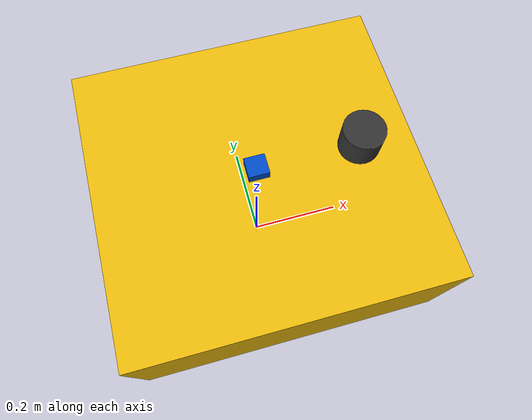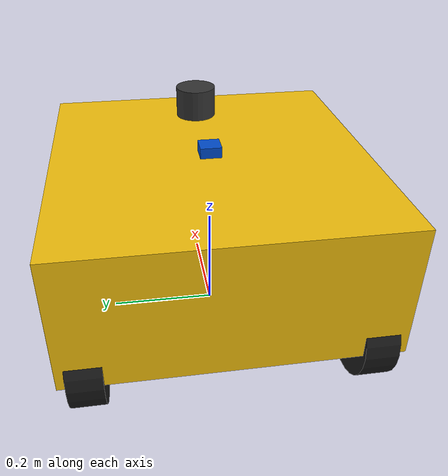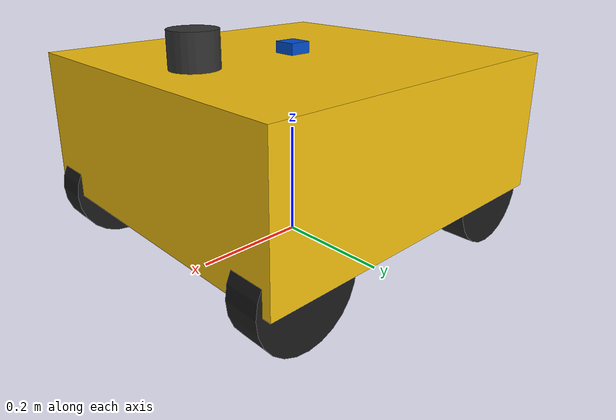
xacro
<?xml version="1.0"?>
<robot xmlns:xacro="http://www.ros.org/wiki/xacro" name="scout_mini">

  <!-- Properties: Scout Mini physical parameters                     -->
  <xacro:property name="base_length" value="0.612"/>
  <xacro:property name="base_width"  value="0.580"/>
  <xacro:property name="base_height" value="0.245"/>
  <xacro:property name="base_mass"   value="22.0"/>

  <xacro:property name="wheel_radius"    value="0.090"/>
  <xacro:property name="wheel_width"     value="0.060"/>
  <xacro:property name="wheel_mass"      value="1.5"/>
  <xacro:property name="wheelbase"       value="0.452"/>
  <xacro:property name="track_width"     value="0.490"/>

  <xacro:property name="base_z_offset" value="${wheel_radius}"/>

  <!-- Launch-supplied arguments -->
  <xacro:arg name="namespace" default=""/>
  <xacro:arg name="use_imu" default="true"/>
  <xacro:arg name="use_lidar" default="true"/>
  <xacro:arg name="lidar_samples" default="360"/>
  <xacro:arg name="imu_rate" default="100"/>

  <!-- Inertial macros                                                 -->
  <xacro:macro name="box_inertia" params="m x y z">
    <inertial>
      <mass value="${m}"/>
      <inertia
        ixx="${m*(y*y + z*z)/12.0}" ixy="0.0" ixz="0.0"
        iyy="${m*(x*x + z*z)/12.0}" iyz="0.0"
        izz="${m*(x*x + y*y)/12.0}"/>
    </inertial>
  </xacro:macro>

  <xacro:macro name="cylinder_inertia" params="m r h">
    <inertial>
      <mass value="${m}"/>
      <inertia
        ixx="${m*(3*r*r + h*h)/12.0}" ixy="0.0" ixz="0.0"
        iyy="${m*(3*r*r + h*h)/12.0}" iyz="0.0"
        izz="${m*r*r/2.0}"/>
    </inertial>
  </xacro:macro>

  <!-- Sensor and gazebo includes                                      -->
  <xacro:include filename="$(find scout_mini_description)/urdf/sensors/imu.xacro"/>
  <xacro:include filename="$(find scout_mini_description)/urdf/sensors/lidar_2d.xacro"/>
  <xacro:include filename="$(find scout_mini_description)/urdf/scout_mini.gazebo.xacro"/>

  <!-- base_footprint                                                  -->
  <link name="base_footprint"/>

  <!-- base_link                                                       -->
  <link name="base_link">
    <visual>
      <origin xyz="0 0 ${base_height/2}" rpy="0 0 0"/>
      <geometry>
        <box size="${base_length} ${base_width} ${base_height}"/>
      </geometry>
      <material name="scout_yellow">
        <color rgba="0.95 0.75 0.05 1.0"/>
      </material>
    </visual>
    <collision>
      <origin xyz="0 0 ${base_height/2}" rpy="0 0 0"/>
      <geometry>
        <box size="${base_length} ${base_width} ${base_height}"/>
      </geometry>
    </collision>
    <xacro:box_inertia m="${base_mass}" x="${base_length}" y="${base_width}" z="${base_height}"/>
  </link>

  <joint name="base_footprint_to_base_link" type="fixed">
    <parent link="base_footprint"/>
    <child link="base_link"/>
    <origin xyz="0 0 ${base_z_offset}" rpy="0 0 0"/>
  </joint>

  <!-- Wheel macro                                                     -->
  <xacro:macro name="wheel" params="prefix x_offset y_offset">
    <link name="${prefix}_wheel_link">
      <visual>
        <origin xyz="0 0 0" rpy="${pi/2} 0 0"/>
        <geometry>
          <cylinder radius="${wheel_radius}" length="${wheel_width}"/>
        </geometry>
        <material name="wheel_black">
          <color rgba="0.1 0.1 0.1 1.0"/>
        </material>
      </visual>
      <collision>
        <origin xyz="0 0 0" rpy="${pi/2} 0 0"/>
        <geometry>
          <cylinder radius="${wheel_radius}" length="${wheel_width}"/>
        </geometry>
      </collision>
      <xacro:cylinder_inertia m="${wheel_mass}" r="${wheel_radius}" h="${wheel_width}"/>
    </link>

    <joint name="${prefix}_wheel_joint" type="continuous">
      <parent link="base_link"/>
      <child link="${prefix}_wheel_link"/>
      <origin xyz="${x_offset} ${y_offset} 0" rpy="0 0 0"/>
      <axis xyz="0 1 0"/>
    </joint>
  </xacro:macro>

  <!-- Instantiate four wheels -->
  <xacro:wheel prefix="front_left"  x_offset="${ wheelbase/2}" y_offset="${ track_width/2}"/>
  <xacro:wheel prefix="front_right" x_offset="${ wheelbase/2}" y_offset="${-track_width/2}"/>
  <xacro:wheel prefix="rear_left"   x_offset="${-wheelbase/2}" y_offset="${ track_width/2}"/>
  <xacro:wheel prefix="rear_right"  x_offset="${-wheelbase/2}" y_offset="${-track_width/2}"/>

  <!-- Conditional sensors                                             -->
  <xacro:if value="$(arg use_imu)">
    <xacro:imu_sensor
      name="imu"
      parent="base_link"
      xyz="0 0 ${base_height + 0.01}"
      rpy="0 0 0"
      rate="$(arg imu_rate)"
      namespace="$(arg namespace)"
      topic="imu"/>
  </xacro:if>

  <xacro:if value="$(arg use_lidar)">
    <xacro:lidar_2d_sensor
      name="lidar"
      parent="base_link"
      xyz="0.20 0 ${base_height + 0.03}"
      rpy="0 0 0"
      samples="$(arg lidar_samples)"
      namespace="$(arg namespace)"
      topic="scan"/>
  </xacro:if>

  <!-- Gazebo material + skid-steer plugin -->
  <xacro:scout_mini_gazebo namespace="$(arg namespace)"/>

</robot>

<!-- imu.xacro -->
<robot xmlns:xacro="http://www.ros.org/wiki/xacro">

  <xacro:macro name="imu_sensor" params="name parent xyz rpy
                                          rate:=100
                                          gyro_stddev:=0.0002
                                          accel_stddev:=0.017
                                          topic:=imu
                                          namespace:=''">

    <link name="${name}_link">
      <visual>
        <geometry>
          <box size="0.04 0.04 0.02"/>
        </geometry>
        <material name="imu_blue_${name}">
          <color rgba="0.0 0.3 0.8 1.0"/>
        </material>
      </visual>
      <collision>
        <geometry>
          <box size="0.04 0.04 0.02"/>
        </geometry>
      </collision>
      <inertial>
        <mass value="0.05"/>
        <inertia
          ixx="1e-5" ixy="0.0" ixz="0.0"
          iyy="1e-5" iyz="0.0"
          izz="1e-5"/>
      </inertial>
    </link>

    <joint name="${name}_joint" type="fixed">
      <parent link="${parent}"/>
      <child link="${name}_link"/>
      <origin xyz="${xyz}" rpy="${rpy}"/>
    </joint>

    <gazebo reference="${name}_link">
      <sensor name="${name}_sensor" type="imu">
        <always_on>true</always_on>
        <update_rate>${rate}</update_rate>
        <visualize>false</visualize>
        <topic>__default_topic__</topic>
        <plugin filename="libgazebo_ros_imu_sensor.so" name="${name}_plugin">
          <ros>
            <namespace>${namespace}</namespace>
            <remapping>~/out:=${topic}</remapping>
          </ros>
          <initial_orientation_as_reference>false</initial_orientation_as_reference>
          <frame_name>${name}_link</frame_name>
        </plugin>
        <imu>
          <angular_velocity>
            <x>
              <noise type="gaussian">
                <mean>0.0</mean>
                <stddev>${gyro_stddev}</stddev>
                <bias_mean>0.0000075</bias_mean>
                <bias_stddev>0.0000008</bias_stddev>
              </noise>
            </x>
            <y>
              <noise type="gaussian">
                <mean>0.0</mean>
                <stddev>${gyro_stddev}</stddev>
                <bias_mean>0.0000075</bias_mean>
                <bias_stddev>0.0000008</bias_stddev>
              </noise>
            </y>
            <z>
              <noise type="gaussian">
                <mean>0.0</mean>
                <stddev>${gyro_stddev}</stddev>
                <bias_mean>0.0000075</bias_mean>
                <bias_stddev>0.0000008</bias_stddev>
              </noise>
            </z>
          </angular_velocity>
          <linear_acceleration>
            <x>
              <noise type="gaussian">
                <mean>0.0</mean>
                <stddev>${accel_stddev}</stddev>
                <bias_mean>0.1</bias_mean>
                <bias_stddev>0.001</bias_stddev>
              </noise>
            </x>
            <y>
              <noise type="gaussian">
                <mean>0.0</mean>
                <stddev>${accel_stddev}</stddev>
                <bias_mean>0.1</bias_mean>
                <bias_stddev>0.001</bias_stddev>
              </noise>
            </y>
            <z>
              <noise type="gaussian">
                <mean>0.0</mean>
                <stddev>${accel_stddev}</stddev>
                <bias_mean>0.1</bias_mean>
                <bias_stddev>0.001</bias_stddev>
              </noise>
            </z>
          </linear_acceleration>
        </imu>
      </sensor>
    </gazebo>

  </xacro:macro>

</robot>

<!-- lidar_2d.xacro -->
<robot xmlns:xacro="http://www.ros.org/wiki/xacro">

  <xacro:macro name="lidar_2d_sensor" params="name parent xyz rpy
                                               samples:=360
                                               update_rate:=10
                                               min_range:=0.12
                                               max_range:=12.0
                                               noise_stddev:=0.01
                                               topic:=scan
                                               namespace:=''
                                               visualize:=true">

    <link name="${name}_link">
      <visual>
        <geometry>
          <cylinder radius="0.04" length="0.06"/>
        </geometry>
        <material name="lidar_dark_${name}">
          <color rgba="0.2 0.2 0.2 1.0"/>
        </material>
      </visual>
      <collision>
        <geometry>
          <cylinder radius="0.04" length="0.06"/>
        </geometry>
      </collision>
      <inertial>
        <mass value="0.2"/>
        <inertia
          ixx="2e-4" ixy="0.0" ixz="0.0"
          iyy="2e-4" iyz="0.0"
          izz="1e-4"/>
      </inertial>
    </link>

    <joint name="${name}_joint" type="fixed">
      <parent link="${parent}"/>
      <child link="${name}_link"/>
      <origin xyz="${xyz}" rpy="${rpy}"/>
    </joint>

    <gazebo reference="${name}_link">
      <sensor name="${name}_sensor" type="ray">
        <always_on>true</always_on>
        <update_rate>${update_rate}</update_rate>
        <visualize>${visualize}</visualize>
        <pose>0 0 0 0 0 0</pose>
        <ray>
          <scan>
            <horizontal>
              <samples>${samples}</samples>
              <resolution>1</resolution>
              <min_angle>-3.14159</min_angle>
              <max_angle>3.14159</max_angle>
            </horizontal>
          </scan>
          <range>
            <min>${min_range}</min>
            <max>${max_range}</max>
            <resolution>0.015</resolution>
          </range>
          <noise>
            <type>gaussian</type>
            <mean>0.0</mean>
            <stddev>${noise_stddev}</stddev>
          </noise>
        </ray>
        <plugin filename="libgazebo_ros_ray_sensor.so" name="${name}_plugin">
          <ros>
            <namespace>${namespace}</namespace>
            <remapping>~/out:=${topic}</remapping>
          </ros>
          <output_type>sensor_msgs/LaserScan</output_type>
          <frame_name>${name}_link</frame_name>
        </plugin>
      </sensor>
    </gazebo>

  </xacro:macro>

</robot>
